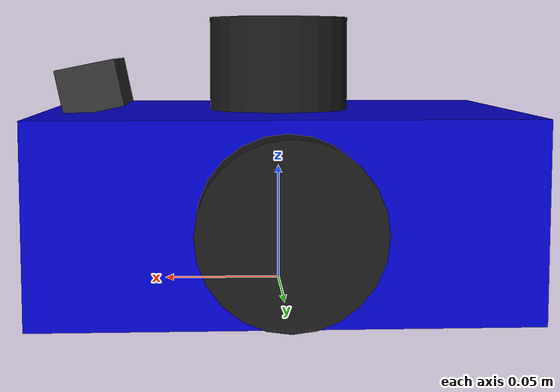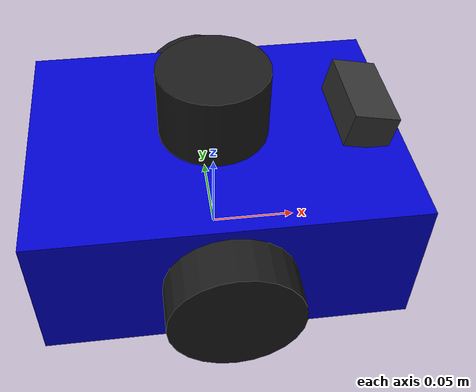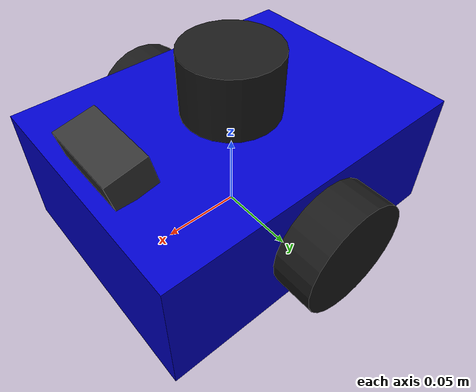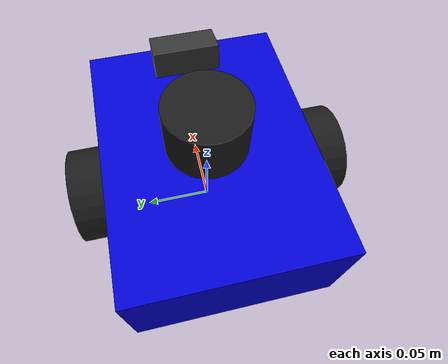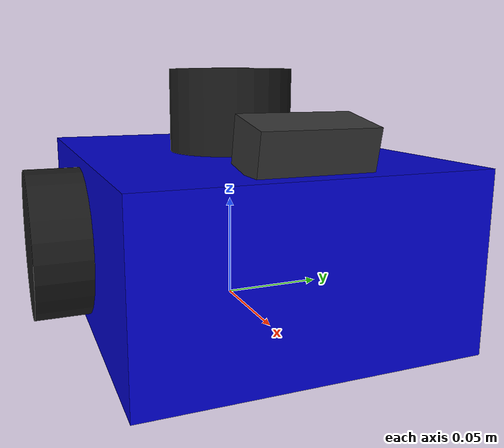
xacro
<?xml version="1.0"?>
<robot name="wro_robot" xmlns:xacro="http://www.ros.org/wiki/xacro">

  <!-- Properties -->
  <xacro:property name="chassis_length" value="0.20"/>
  <xacro:property name="chassis_width" value="0.15"/>
  <xacro:property name="chassis_height" value="0.08"/>
  <xacro:property name="wheel_radius" value="0.035"/>
  <xacro:property name="wheel_width" value="0.025"/>
  <xacro:property name="wheel_mass" value="0.1"/>
  <xacro:property name="chassis_mass" value="1.0"/>

  <!-- Base link (chassis) -->
  <link name="base_link">
    <visual>
      <geometry>
        <box size="${chassis_length} ${chassis_width} ${chassis_height}"/>
      </geometry>
      <material name="blue">
        <color rgba="0 0 0.8 1"/>
      </material>
    </visual>
    <collision>
      <geometry>
        <box size="${chassis_length} ${chassis_width} ${chassis_height}"/>
      </geometry>
    </collision>
    <inertial>
      <mass value="${chassis_mass}"/>
      <origin xyz="0 0 0" rpy="0 0 0"/>
      <inertia
        ixx="0.00267" ixy="0.0" ixz="0.0"
        iyy="0.00417" iyz="0.0"
        izz="0.00533"/>
    </inertial>
  </link>

  <!-- Footprint link (for navigation) -->
  <link name="base_footprint"/>

  <joint name="base_footprint_joint" type="fixed">
    <parent link="base_footprint"/>
    <child link="base_link"/>
    <origin xyz="0 0 ${wheel_radius}" rpy="0 0 0"/>
  </joint>

  <!-- Camera -->
  <link name="camera_link">
    <visual>
      <geometry>
        <box size="0.025 0.05 0.02"/>
      </geometry>
      <material name="camera_color">
        <color rgba="0.2 0.2 0.2 1"/>
      </material>
    </visual>
    <collision>
      <geometry>
        <box size="0.025 0.05 0.02"/>
      </geometry>
    </collision>
    <inertial>
      <mass value="0.01"/>
      <inertia ixx="0.0001" ixy="0.0" ixz="0.0"
               iyy="0.0001" iyz="0.0" izz="0.0001"/>
    </inertial>
  </link>

  <joint name="camera_joint" type="fixed">
    <parent link="base_link"/>
    <child link="camera_link"/>
    <origin xyz="0.08 0 0.05" rpy="0 0.2 0"/>  <!-- Slight downward tilt -->
  </joint>

  <!-- Camera sensor (Gazebo plugin) -->
  <gazebo reference="camera_link">
    <sensor name="camera" type="camera">
      <update_rate>30.0</update_rate>
      <camera>
        <horizontal_fov>2.094</horizontal_fov>  <!-- 120 degrees -->
        <image>
          <width>640</width>
          <height>480</height>
          <format>RGB8</format>
        </image>
        <clip>
          <near>0.05</near>
          <far>10.0</far>
        </clip>
        <noise>
          <type>gaussian</type>
          <mean>0.0</mean>
          <stddev>0.007</stddev>  <!-- Realistic camera noise -->
        </noise>
      </camera>
      <plugin name="camera_controller" filename="libgazebo_ros_camera.so">
        <ros>
          <namespace>/wro_robot</namespace>
          <remapping>~/image_raw:=/camera/image_raw</remapping>
          <remapping>~/camera_info:=/camera/camera_info</remapping>
        </ros>
        <camera_name>camera</camera_name>
        <frame_name>camera_link</frame_name>
        <hack_baseline>0.0</hack_baseline>
      </plugin>
    </sensor>
  </gazebo>

  <!-- LiDAR -->
  <link name="lidar_link">
    <visual>
      <geometry>
        <cylinder radius="0.03" length="0.04"/>
      </geometry>
      <material name="lidar_color">
        <color rgba="0.1 0.1 0.1 1"/>
      </material>
    </visual>
    <collision>
      <geometry>
        <cylinder radius="0.03" length="0.04"/>
      </geometry>
    </collision>
    <inertial>
      <mass value="0.05"/>
      <inertia ixx="0.0001" ixy="0.0" ixz="0.0"
               iyy="0.0001" iyz="0.0" izz="0.0001"/>
    </inertial>
  </link>

  <joint name="lidar_joint" type="fixed">
    <parent link="base_link"/>
    <child link="lidar_link"/>
    <origin xyz="0 0 0.06" rpy="0 0 0"/>
  </joint>

  <!-- LiDAR sensor (Gazebo plugin) -->
  <gazebo reference="lidar_link">
    <sensor name="lidar" type="gpu_ray">
      <update_rate>10.0</update_rate>
      <visualize>false</visualize>
      <ray>
        <scan>
          <horizontal>
            <samples>720</samples>
            <resolution>1</resolution>
            <min_angle>-3.14159</min_angle>
            <max_angle>3.14159</max_angle>
          </horizontal>
        </scan>
        <range>
          <min>0.2</min>
          <max>12.0</max>
          <resolution>0.01</resolution>
        </range>
        <noise>
          <type>gaussian</type>
          <mean>0.0</mean>
          <stddev>0.01</stddev>
        </noise>
      </ray>
      <plugin name="lidar_controller" filename="libgazebo_ros_ray_sensor.so">
        <ros>
          <namespace>/wro_robot</namespace>
          <remapping>~/out:=/scan</remapping>
        </ros>
        <output_type>sensor_msgs/LaserScan</output_type>
        <frame_name>lidar_link</frame_name>
      </plugin>
    </sensor>
  </gazebo>

  <!-- IMU -->
  <link name="imu_link">
    <inertial>
      <mass value="0.01"/>
      <inertia ixx="0.0001" ixy="0.0" ixz="0.0"
               iyy="0.0001" iyz="0.0" izz="0.0001"/>
    </inertial>
  </link>

  <joint name="imu_joint" type="fixed">
    <parent link="base_link"/>
    <child link="imu_link"/>
    <origin xyz="0 0 0" rpy="0 0 0"/>
  </joint>

  <gazebo reference="imu_link">
    <sensor name="imu" type="imu">
      <always_on>true</always_on>
      <update_rate>100.0</update_rate>
      <plugin name="imu_plugin" filename="libgazebo_ros_imu_sensor.so">
        <ros>
          <namespace>/wro_robot</namespace>
          <remapping>~/out:=/imu</remapping>
        </ros>
        <initial_orientation_as_reference>false</initial_orientation_as_reference>
      </plugin>
    </sensor>
  </gazebo>

  <!-- Wheels -->
  <!-- Left wheel -->
  <link name="left_wheel">
    <visual>
      <geometry>
        <cylinder radius="${wheel_radius}" length="${wheel_width}"/>
      </geometry>
      <origin xyz="0 0 0" rpy="1.5708 0 0"/>
      <material name="black">
        <color rgba="0.1 0.1 0.1 1"/>
      </material>
    </visual>
    <collision>
      <geometry>
        <cylinder radius="${wheel_radius}" length="${wheel_width}"/>
      </geometry>
      <origin xyz="0 0 0" rpy="1.5708 0 0"/>
    </collision>
    <inertial>
      <mass value="${wheel_mass}"/>
      <origin xyz="0 0 0" rpy="1.5708 0 0"/>
      <inertia
        ixx="0.0001" ixy="0.0" ixz="0.0"
        iyy="0.0001" iyz="0.0" izz="0.0001"/>
    </inertial>
  </link>

  <joint name="left_wheel_joint" type="continuous">
    <parent link="base_link"/>
    <child link="left_wheel"/>
    <origin xyz="0 ${chassis_width/2 + wheel_width/2} 0" rpy="0 0 0"/>
    <axis xyz="0 1 0"/>
  </joint>

  <!-- Right wheel -->
  <link name="right_wheel">
    <visual>
      <geometry>
        <cylinder radius="${wheel_radius}" length="${wheel_width}"/>
      </geometry>
      <origin xyz="0 0 0" rpy="1.5708 0 0"/>
      <material name="black">
        <color rgba="0.1 0.1 0.1 1"/>
      </material>
    </visual>
    <collision>
      <geometry>
        <cylinder radius="${wheel_radius}" length="${wheel_width}"/>
      </geometry>
      <origin xyz="0 0 0" rpy="1.5708 0 0"/>
    </collision>
    <inertial>
      <mass value="${wheel_mass}"/>
      <origin xyz="0 0 0" rpy="1.5708 0 0"/>
      <inertia
        ixx="0.0001" ixy="0.0" ixz="0.0"
        iyy="0.0001" iyz="0.0" izz="0.0001"/>
    </inertial>
  </link>

  <joint name="right_wheel_joint" type="continuous">
    <parent link="base_link"/>
    <child link="right_wheel"/>
    <origin xyz="0 ${-(chassis_width/2 + wheel_width/2)} 0" rpy="0 0 0"/>
    <axis xyz="0 1 0"/>
  </joint>

  <!-- Caster wheel (front) -->
  <link name="caster_wheel">
    <visual>
      <geometry>
        <sphere radius="0.02"/>
      </geometry>
      <material name="gray">
        <color rgba="0.5 0.5 0.5 1"/>
      </material>
    </visual>
    <collision>
      <geometry>
        <sphere radius="0.02"/>
      </geometry>
      <surface>
        <friction>
          <ode>
            <mu>0.0</mu>
            <mu2>0.0</mu2>
          </ode>
        </friction>
      </surface>
    </collision>
    <inertial>
      <mass value="0.01"/>
      <inertia ixx="0.00001" ixy="0.0" ixz="0.0"
               iyy="0.00001" iyz="0.0" izz="0.00001"/>
    </inertial>
  </link>

  <joint name="caster_wheel_joint" type="fixed">
    <parent link="base_link"/>
    <child link="caster_wheel"/>
    <origin xyz="0.07 0 -0.025" rpy="0 0 0"/>
  </joint>

  <!-- Differential drive controller -->
  <gazebo>
    <plugin name="diff_drive_controller" filename="libgazebo_ros_diff_drive.so">
      <ros>
        <namespace>/wro_robot</namespace>
      </ros>

      <!-- Wheels -->
      <left_joint>left_wheel_joint</left_joint>
      <right_joint>right_wheel_joint</right_joint>

      <!-- Kinematics -->
      <wheel_separation>${chassis_width + wheel_width}</wheel_separation>
      <wheel_diameter>${2*wheel_radius}</wheel_diameter>

      <!-- Limits -->
      <max_wheel_torque>2.0</max_wheel_torque>
      <max_wheel_acceleration>1.0</max_wheel_acceleration>

      <!-- Output -->
      <publish_odom>true</publish_odom>
      <publish_odom_tf>true</publish_odom_tf>
      <publish_wheel_tf>true</publish_wheel_tf>

      <odometry_frame>odom</odometry_frame>
      <robot_base_frame>base_footprint</robot_base_frame>

      <!-- Topics -->
      <command_topic>cmd_vel</command_topic>
      <odometry_topic>odom</odometry_topic>

      <!-- Update rate -->
      <update_rate>50.0</update_rate>
    </plugin>
  </gazebo>

  <!-- Gazebo materials -->
  <gazebo reference="base_link">
    <material>Gazebo/Blue</material>
  </gazebo>

  <gazebo reference="left_wheel">
    <material>Gazebo/DarkGray</material>
    <mu1>1.0</mu1>
    <mu2>1.0</mu2>
  </gazebo>

  <gazebo reference="right_wheel">
    <material>Gazebo/DarkGray</material>
    <mu1>1.0</mu1>
    <mu2>1.0</mu2>
  </gazebo>

</robot>
